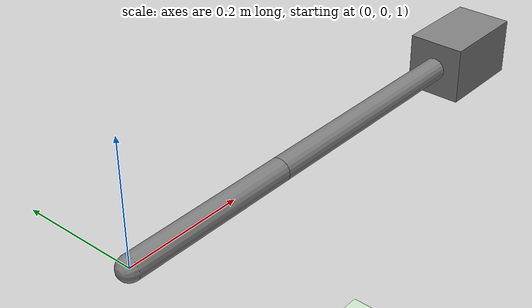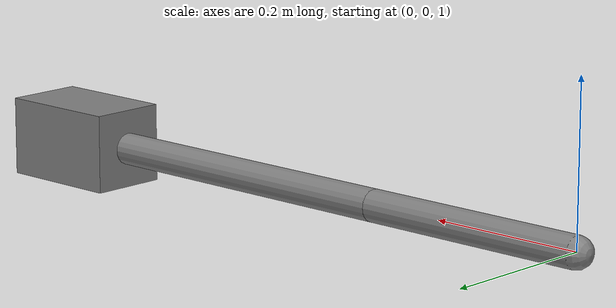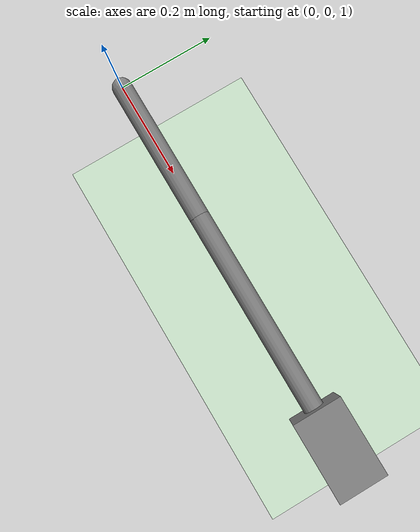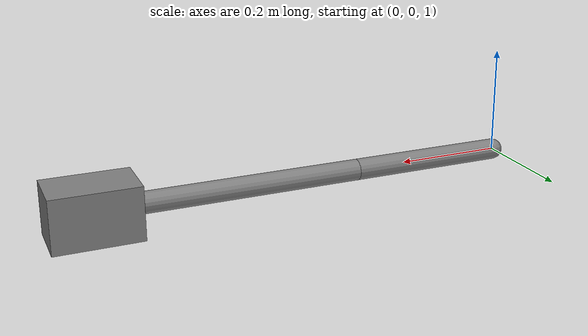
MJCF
<?xml version='1.0' encoding='UTF-8'?>
<!-- Slider+crank with equality constraint. Stresses solver / SOLVER_TOGGLE / equality solving. --><mujoco model="slider_crank">
  <option gravity="0 0 -9.81" timestep="0.002" integrator="implicit" solver="Newton" iterations="50"/>
  <worldbody>
    <light pos="0 0 3"/>
    <geom name="floor" type="plane" size="2 2 0.1" rgba="0.8 0.9 0.8 1"/>
    <body name="crank" pos="0 0 1">
      <joint name="rot" type="hinge" axis="0 1 0" damping="0.01"/>
      <geom name="gc" type="capsule" fromto="0 0 0 0.3 0 0" size="0.02" mass="0.3"/>
      <body name="rod" pos="0.3 0 0">
        <joint name="pin1" type="hinge" axis="0 1 0" damping="0.01"/>
        <geom name="gr" type="capsule" fromto="0 0 0 0.5 0 0" size="0.02" mass="0.4"/>
      </body>
    </body>
    <body name="slider" pos="0.8 0 1">
      <joint name="slide" type="slide" axis="1 0 0" range="-1 1" damping="0.05"/>
      <geom name="gs" type="box" size="0.08 0.05 0.05" mass="0.5"/>
    </body>
  </worldbody>
  <equality>
    <connect name="rod_slider" body1="rod" body2="slider" anchor="0.5 0 0"/>
  </equality>
  <actuator>
    <motor name="drive" joint="rot" ctrlrange="-5 5"/>
  </actuator>
</mujoco>
